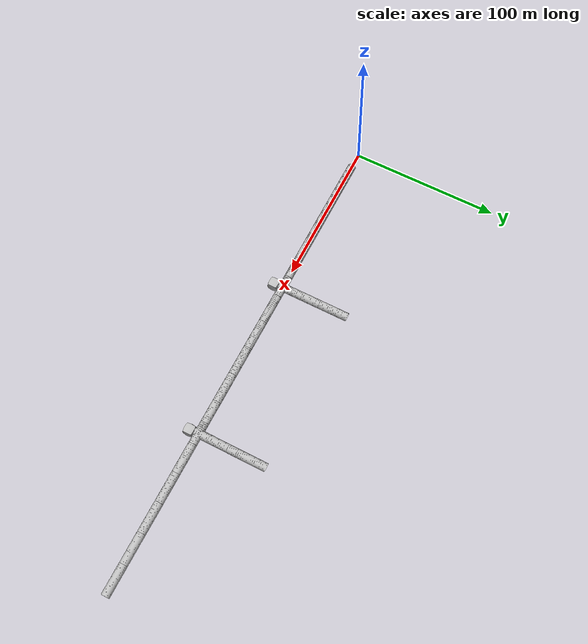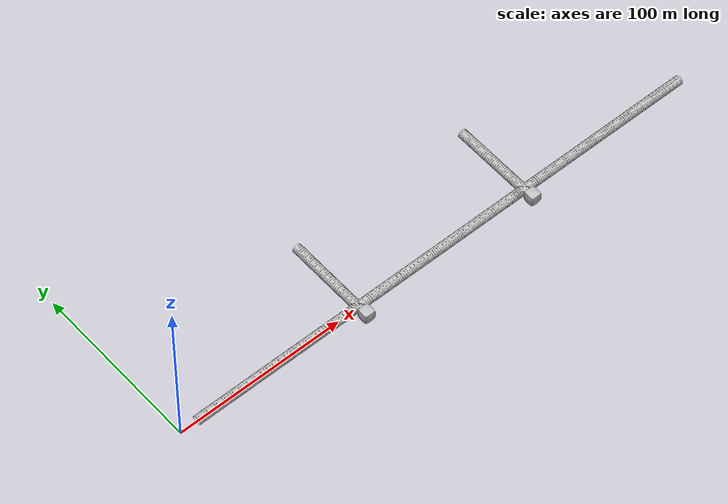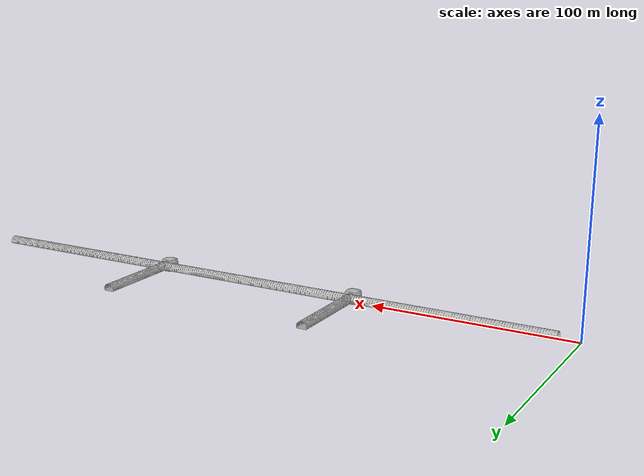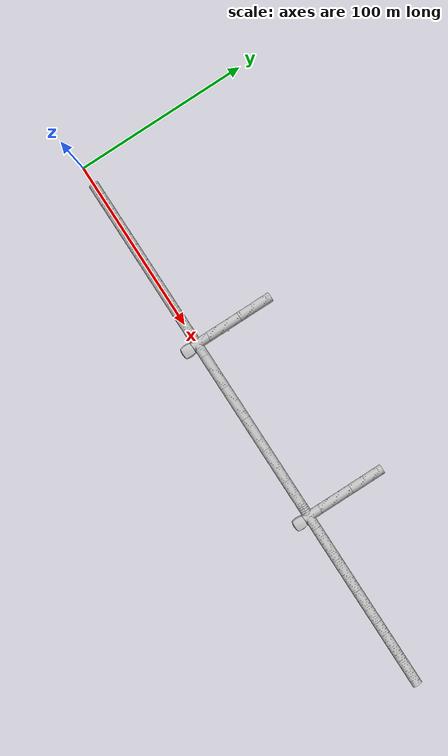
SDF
<sdf version="1.7">
 <world name="tunnel_practice_1">
  <scene>
   <ambient>0.2 0.2 0.2 1</ambient>
   <background>0.34 0.39 0.43 1</background>
   <grid>0</grid>
   <origin_visual>0</origin_visual>
   <shadows>1</shadows>
  </scene>
  <light name="user_point_light_0" type="point">
   <pose>30 0 3 0 -0 0</pose>
   <diffuse>0.5 0.5 0.5 1</diffuse>
   <specular>0.1 0.1 0.1 1</specular>
   <attenuation><range>40</range><constant>0.5</constant><linear>0</linear><quadratic>0</quadratic></attenuation>
   <cast_shadows>0</cast_shadows>
   <direction>0 0 -1</direction>
   <spot><inner_angle>0</inner_angle><outer_angle>0</outer_angle><falloff>0</falloff></spot>
  </light>
  <light name="user_point_light_1" type="point">
   <pose>60 0 3 0 -0 0</pose>
   <diffuse>0.5 0.5 0.5 1</diffuse>
   <specular>0.1 0.1 0.1 1</specular>
   <attenuation><range>40</range><constant>0.5</constant><linear>0</linear><quadratic>0</quadratic></attenuation>
   <cast_shadows>0</cast_shadows>
   <direction>0 0 -1</direction>
   <spot><inner_angle>0</inner_angle><outer_angle>0</outer_angle><falloff>0</falloff></spot>
  </light>
  <light name="user_point_light_2" type="point">
   <pose>90 0 3 0 -0 0</pose>
   <diffuse>0.5 0.5 0.5 1</diffuse>
   <specular>0.1 0.1 0.1 1</specular>
   <attenuation><range>40</range><constant>0.5</constant><linear>0</linear><quadratic>0</quadratic></attenuation>
   <cast_shadows>0</cast_shadows>
   <direction>0 0 -1</direction>
   <spot><inner_angle>0</inner_angle><outer_angle>0</outer_angle><falloff>0</falloff></spot>
  </light>
  <light name="user_point_light_3" type="point">
   <pose>120 0 3 0 -0 0</pose>
   <diffuse>0.5 0.5 0.5 1</diffuse>
   <specular>0.1 0.1 0.1 1</specular>
   <attenuation><range>40</range><constant>0.5</constant><linear>0</linear><quadratic>0</quadratic></attenuation>
   <cast_shadows>0</cast_shadows>
   <direction>0 0 -1</direction>
   <spot><inner_angle>0</inner_angle><outer_angle>0</outer_angle><falloff>0</falloff></spot>
  </light>
  <light name="user_point_light_4" type="point">
   <pose>150 0 3 0 -0 0</pose>
   <diffuse>0.5 0.5 0.5 1</diffuse>
   <specular>0.1 0.1 0.1 1</specular>
   <attenuation><range>40</range><constant>0.5</constant><linear>0</linear><quadratic>0</quadratic></attenuation>
   <cast_shadows>0</cast_shadows>
   <direction>0 0 -1</direction>
   <spot><inner_angle>0</inner_angle><outer_angle>0</outer_angle><falloff>0</falloff></spot>
  </light>
  <light name="user_point_light_5" type="point">
   <pose>180 0 3 0 -0 0</pose>
   <diffuse>0.5 0.5 0.5 1</diffuse>
   <specular>0.1 0.1 0.1 1</specular>
   <attenuation><range>40</range><constant>0.5</constant><linear>0</linear><quadratic>0</quadratic></attenuation>
   <cast_shadows>0</cast_shadows>
   <direction>0 0 -1</direction>
   <spot><inner_angle>0</inner_angle><outer_angle>0</outer_angle><falloff>0</falloff></spot>
  </light>
  <light name="user_point_light_6" type="point">
   <pose>210 0 3 0 -0 0</pose>
   <diffuse>0.5 0.5 0.5 1</diffuse>
   <specular>0.1 0.1 0.1 1</specular>
   <attenuation><range>40</range><constant>0.5</constant><linear>0</linear><quadratic>0</quadratic></attenuation>
   <cast_shadows>0</cast_shadows>
   <direction>0 0 -1</direction>
   <spot><inner_angle>0</inner_angle><outer_angle>0</outer_angle><falloff>0</falloff></spot>
  </light>
  <light name="user_point_light_7" type="point">
   <pose>240 0 3 0 -0 0</pose>
   <diffuse>0.5 0.5 0.5 1</diffuse>
   <specular>0.1 0.1 0.1 1</specular>
   <attenuation><range>40</range><constant>0.5</constant><linear>0</linear><quadratic>0</quadratic></attenuation>
   <cast_shadows>0</cast_shadows>
   <direction>0 0 -1</direction>
   <spot><inner_angle>0</inner_angle><outer_angle>0</outer_angle><falloff>0</falloff></spot>
  </light>
  <light name="user_point_light_8" type="point">
   <pose>270 0 3 0 -0 0</pose>
   <diffuse>0.5 0.5 0.5 1</diffuse>
   <specular>0.1 0.1 0.1 1</specular>
   <attenuation><range>40</range><constant>0.5</constant><linear>0</linear><quadratic>0</quadratic></attenuation>
   <cast_shadows>0</cast_shadows>
   <direction>0 0 -1</direction>
   <spot><inner_angle>0</inner_angle><outer_angle>0</outer_angle><falloff>0</falloff></spot>
  </light>
  <light name="user_point_light_9" type="point">
   <pose>300 0 3 0 -0 0</pose>
   <diffuse>0.5 0.5 0.5 1</diffuse>
   <specular>0.1 0.1 0.1 1</specular>
   <attenuation><range>40</range><constant>0.5</constant><linear>0</linear><quadratic>0</quadratic></attenuation>
   <cast_shadows>0</cast_shadows>
   <direction>0 0 -1</direction>
   <spot><inner_angle>0</inner_angle><outer_angle>0</outer_angle><falloff>0</falloff></spot>
  </light>
  <light name="user_point_light_10" type="point">
   <pose>330 0 3 0 -0 0</pose>
   <diffuse>0.5 0.5 0.5 1</diffuse>
   <specular>0.1 0.1 0.1 1</specular>
   <attenuation><range>40</range><constant>0.5</constant><linear>0</linear><quadratic>0</quadratic></attenuation>
   <cast_shadows>0</cast_shadows>
   <direction>0 0 -1</direction>
   <spot><inner_angle>0</inner_angle><outer_angle>0</outer_angle><falloff>0</falloff></spot>
  </light>
  <light name="user_point_light_11" type="point">
   <pose>360 0 3 0 -0 0</pose>
   <diffuse>0.5 0.5 0.5 1</diffuse>
   <specular>0.1 0.1 0.1 1</specular>
   <attenuation><range>40</range><constant>0.5</constant><linear>0</linear><quadratic>0</quadratic></attenuation>
   <cast_shadows>0</cast_shadows>
   <direction>0 0 -1</direction>
   <spot><inner_angle>0</inner_angle><outer_angle>0</outer_angle><falloff>0</falloff></spot>
  </light>
  <light name="user_point_light_12" type="point">
   <pose>390 0 3 0 -0 0</pose>
   <diffuse>0.5 0.5 0.5 1</diffuse>
   <specular>0.1 0.1 0.1 1</specular>
   <attenuation><range>40</range><constant>0.5</constant><linear>0</linear><quadratic>0</quadratic></attenuation>
   <cast_shadows>0</cast_shadows>
   <direction>0 0 -1</direction>
   <spot><inner_angle>0</inner_angle><outer_angle>0</outer_angle><falloff>0</falloff></spot>
  </light>
  <model name="tile_0">
   <static>1</static>
   <link name="link">
    <collision name="collision">
     <geometry>
      <mesh><scale>0.01 0.01 0.01</scale><uri>model://tunnel_entrance/meshes/Entrance.obj</uri></mesh>
     </geometry>
    </collision>
    <visual name="visual">
     <geometry>
      <mesh><scale>0.01 0.01 0.01</scale><uri>model://tunnel_entrance/meshes/Entrance.obj</uri></mesh>
     </geometry>
    </visual>
   </link>
   <pose>10 0 0 0 0 -1.5708</pose>
  </model>
  <model name="tile_1">
   <static>1</static>
   <link name="link">
    <collision name="collision">
     <geometry><mesh><uri>model://tunnel_tile_5/meshes/tunnel_tile_5.dae</uri></mesh></geometry>
    </collision>
    <collision name="collision_ground"><geometry><box><size>5 20 0.001</size></box></geometry></collision>
    <visual name="visual">
     <geometry><mesh><uri>model://tunnel_tile_5/meshes/tunnel_tile_5.dae</uri></mesh></geometry>
    </visual>
   </link>
   <pose>20 0 0 0 -0 1.5708</pose>
  </model>
  <model name="tile_2">
   <static>1</static>
   <link name="link">
    <collision name="collision">
     <geometry><mesh><uri>model://tunnel_tile_5/meshes/tunnel_tile_5.dae</uri></mesh></geometry>
    </collision>
    <collision name="collision_ground"><geometry><box><size>5 20 0.001</size></box></geometry></collision>
    <visual name="visual">
     <geometry><mesh><uri>model://tunnel_tile_5/meshes/tunnel_tile_5.dae</uri></mesh></geometry>
    </visual>
   </link>
   <pose>40 0 0 0 -0 1.5708</pose>
  </model>
  <model name="tile_3">
   <static>1</static>
   <link name="link">
    <collision name="collision">
     <geometry><mesh><uri>model://tunnel_tile_5/meshes/tunnel_tile_5.dae</uri></mesh></geometry>
    </collision>
    <collision name="collision_ground"><geometry><box><size>5 20 0.001</size></box></geometry></collision>
    <visual name="visual">
     <geometry><mesh><uri>model://tunnel_tile_5/meshes/tunnel_tile_5.dae</uri></mesh></geometry>
    </visual>
   </link>
   <pose>60 0 0 0 -0 1.5708</pose>
  </model>
  <model name="tile_4">
   <static>1</static>
   <link name="link">
    <collision name="collision">
     <geometry><mesh><uri>model://tunnel_tile_5/meshes/tunnel_tile_5.dae</uri></mesh></geometry>
    </collision>
    <collision name="collision_ground"><geometry><box><size>5 20 0.001</size></box></geometry></collision>
    <visual name="visual">
     <geometry><mesh><uri>model://tunnel_tile_5/meshes/tunnel_tile_5.dae</uri></mesh></geometry>
    </visual>
   </link>
   <pose>80 0 0 0 -0 1.5708</pose>
  </model>
  <model name="tile_5">
   <static>1</static>
   <link name="link">
    <collision name="collision">
     <geometry><mesh><uri>model://tunnel_tile_5/meshes/tunnel_tile_5.dae</uri></mesh></geometry>
    </collision>
    <collision name="collision_ground"><geometry><box><size>5 20 0.001</size></box></geometry></collision>
    <visual name="visual">
     <geometry><mesh><uri>model://tunnel_tile_5/meshes/tunnel_tile_5.dae</uri></mesh></geometry>
    </visual>
   </link>
   <pose>100 0 0 0 -0 1.5708</pose>
  </model>
  <model name="tile_7">
   <static>1</static>
   <link name="link">
    <collision name="collision">
     <geometry>
      <mesh>
       <scale>0.01 0.01 0.01</scale>
       <uri>model://tunnel_intersection/meshes/Tunnel_Intersection.obj</uri>
      </mesh>
     </geometry>
    </collision>
    <visual name="visual">
     <geometry>
      <mesh>
       <scale>0.01 0.01 0.01</scale>
       <uri>model://tunnel_intersection/meshes/Tunnel_Intersection.obj</uri>
      </mesh>
     </geometry>
    </visual>
   </link>
   <pose>120 0 0 0 -0 1.5708</pose>
  </model>
  <model name="blocker_1">
   <static>1</static>
   <link name="link">
    <collision name="collision">
     <geometry><mesh><uri>model://tunnel_tile_blocker/meshes/tunnel_tile_blocker.dae</uri></mesh></geometry>
    </collision>
    <visual name="visual">
     <geometry><mesh><uri>model://tunnel_tile_blocker/meshes/tunnel_tile_blocker.dae</uri></mesh></geometry>
    </visual>
   </link>
   <pose>113 -6 0 0 -0 0</pose>
  </model>
  <model name="tile_rot_1">
   <static>1</static>
   <link name="link">
    <collision name="collision">
     <geometry><mesh><uri>model://tunnel_tile_5/meshes/tunnel_tile_5.dae</uri></mesh></geometry>
    </collision>
    <collision name="collision_ground"><geometry><box><size>5 20 0.001</size></box></geometry></collision>
    <visual name="visual">
     <geometry><mesh><uri>model://tunnel_tile_5/meshes/tunnel_tile_5.dae</uri></mesh></geometry>
    </visual>
   </link>
   <pose>112.5 17 0 0 -0 0</pose>
  </model>
  <model name="tile_rot_2">
   <static>1</static>
   <link name="link">
    <collision name="collision">
     <geometry><mesh><uri>model://tunnel_tile_5/meshes/tunnel_tile_5.dae</uri></mesh></geometry>
    </collision>
    <collision name="collision_ground"><geometry><box><size>5 20 0.001</size></box></geometry></collision>
    <visual name="visual">
     <geometry><mesh><uri>model://tunnel_tile_5/meshes/tunnel_tile_5.dae</uri></mesh></geometry>
    </visual>
   </link>
   <pose>112.5 37 0 0 -0 0</pose>
  </model>
  <model name="tile_8">
   <static>1</static>
   <link name="link">
    <collision name="collision">
     <geometry><mesh><uri>model://tunnel_tile_5/meshes/tunnel_tile_5.dae</uri></mesh></geometry>
    </collision>
    <collision name="collision_ground"><geometry><box><size>5 20 0.001</size></box></geometry></collision>
    <visual name="visual">
     <geometry><mesh><uri>model://tunnel_tile_5/meshes/tunnel_tile_5.dae</uri></mesh></geometry>
    </visual>
   </link>
   <pose>130 0 0 0 -0 1.5708</pose>
  </model>
  <model name="tile_9">
   <static>1</static>
   <link name="link">
    <collision name="collision">
     <geometry><mesh><uri>model://tunnel_tile_5/meshes/tunnel_tile_5.dae</uri></mesh></geometry>
    </collision>
    <collision name="collision_ground"><geometry><box><size>5 20 0.001</size></box></geometry></collision>
    <visual name="visual">
     <geometry><mesh><uri>model://tunnel_tile_5/meshes/tunnel_tile_5.dae</uri></mesh></geometry>
    </visual>
   </link>
   <pose>150 0 0 0 -0 1.5708</pose>
  </model>
  <model name="tile_10">
   <static>1</static>
   <link name="link">
    <collision name="collision">
     <geometry><mesh><uri>model://tunnel_tile_5/meshes/tunnel_tile_5.dae</uri></mesh></geometry>
    </collision>
    <collision name="collision_ground"><geometry><box><size>5 20 0.001</size></box></geometry></collision>
    <visual name="visual">
     <geometry><mesh><uri>model://tunnel_tile_5/meshes/tunnel_tile_5.dae</uri></mesh></geometry>
    </visual>
   </link>
   <pose>170 0 0 0 -0 1.5708</pose>
  </model>
  <model name="tile_11">
   <static>1</static>
   <link name="link">
    <collision name="collision">
     <geometry><mesh><uri>model://tunnel_tile_5/meshes/tunnel_tile_5.dae</uri></mesh></geometry>
    </collision>
    <collision name="collision_ground"><geometry><box><size>5 20 0.001</size></box></geometry></collision>
    <visual name="visual">
     <geometry><mesh><uri>model://tunnel_tile_5/meshes/tunnel_tile_5.dae</uri></mesh></geometry>
    </visual>
   </link>
   <pose>190 0 0 0 -0 1.5708</pose>
  </model>
  <model name="tile_12">
   <static>1</static>
   <link name="link">
    <collision name="collision">
     <geometry><mesh><uri>model://tunnel_tile_5/meshes/tunnel_tile_5.dae</uri></mesh></geometry>
    </collision>
    <collision name="collision_ground"><geometry><box><size>5 20 0.001</size></box></geometry></collision>
    <visual name="visual">
     <geometry><mesh><uri>model://tunnel_tile_5/meshes/tunnel_tile_5.dae</uri></mesh></geometry>
    </visual>
   </link>
   <pose>210 0 0 0 -0 1.5708</pose>
  </model>
  <model name="tile_13">
   <static>1</static>
   <link name="link">
    <collision name="collision">
     <geometry>
      <mesh>
       <scale>0.01 0.01 0.01</scale>
       <uri>model://tunnel_intersection/meshes/Tunnel_Intersection.obj</uri>
      </mesh>
     </geometry>
    </collision>
    <visual name="visual">
     <geometry>
      <mesh>
       <scale>0.01 0.01 0.01</scale>
       <uri>model://tunnel_intersection/meshes/Tunnel_Intersection.obj</uri>
      </mesh>
     </geometry>
    </visual>
   </link>
   <pose>230 0 0 0 -0 1.5708</pose>
  </model>
  <model name="blocker_2">
   <static>1</static>
   <link name="link">
    <collision name="collision">
     <geometry><mesh><uri>model://tunnel_tile_blocker/meshes/tunnel_tile_blocker.dae</uri></mesh></geometry>
    </collision>
    <visual name="visual">
     <geometry><mesh><uri>model://tunnel_tile_blocker/meshes/tunnel_tile_blocker.dae</uri></mesh></geometry>
    </visual>
   </link>
   <pose>223 -6 0 0 -0 0</pose>
  </model>
  <model name="tile_rot_3">
   <static>1</static>
   <link name="link">
    <collision name="collision">
     <geometry><mesh><uri>model://tunnel_tile_5/meshes/tunnel_tile_5.dae</uri></mesh></geometry>
    </collision>
    <collision name="collision_ground"><geometry><box><size>5 20 0.001</size></box></geometry></collision>
    <visual name="visual">
     <geometry><mesh><uri>model://tunnel_tile_5/meshes/tunnel_tile_5.dae</uri></mesh></geometry>
    </visual>
   </link>
   <pose>222.5 17 0 0 -0 0</pose>
  </model>
  <model name="tile_rot_4">
   <static>1</static>
   <link name="link">
    <collision name="collision">
     <geometry><mesh><uri>model://tunnel_tile_5/meshes/tunnel_tile_5.dae</uri></mesh></geometry>
    </collision>
    <collision name="collision_ground"><geometry><box><size>5 20 0.001</size></box></geometry></collision>
    <visual name="visual">
     <geometry><mesh><uri>model://tunnel_tile_5/meshes/tunnel_tile_5.dae</uri></mesh></geometry>
    </visual>
   </link>
   <pose>222.5 37 0 0 -0 0</pose>
  </model>
  <model name="tile_14">
   <static>1</static>
   <link name="link">
    <collision name="collision">
     <geometry><mesh><uri>model://tunnel_tile_5/meshes/tunnel_tile_5.dae</uri></mesh></geometry>
    </collision>
    <collision name="collision_ground"><geometry><box><size>5 20 0.001</size></box></geometry></collision>
    <visual name="visual">
     <geometry><mesh><uri>model://tunnel_tile_5/meshes/tunnel_tile_5.dae</uri></mesh></geometry>
    </visual>
   </link>
   <pose>240 0 0 0 -0 1.5708</pose>
  </model>
  <model name="tile_15">
   <static>1</static>
   <link name="link">
    <collision name="collision">
     <geometry><mesh><uri>model://tunnel_tile_5/meshes/tunnel_tile_5.dae</uri></mesh></geometry>
    </collision>
    <collision name="collision_ground"><geometry><box><size>5 20 0.001</size></box></geometry></collision>
    <visual name="visual">
     <geometry><mesh><uri>model://tunnel_tile_5/meshes/tunnel_tile_5.dae</uri></mesh></geometry>
    </visual>
   </link>
   <pose>260 0 0 0 -0 1.5708</pose>
  </model>
  <model name="tile_16">
   <static>1</static>
   <link name="link">
    <collision name="collision">
     <geometry><mesh><uri>model://tunnel_tile_5/meshes/tunnel_tile_5.dae</uri></mesh></geometry>
    </collision>
    <collision name="collision_ground"><geometry><box><size>5 20 0.001</size></box></geometry></collision>
    <visual name="visual">
     <geometry><mesh><uri>model://tunnel_tile_5/meshes/tunnel_tile_5.dae</uri></mesh></geometry>
    </visual>
   </link>
   <pose>280 0 0 0 -0 1.5708</pose>
  </model>
  <model name="tile_17">
   <static>1</static>
   <link name="link">
    <collision name="collision">
     <geometry><mesh><uri>model://tunnel_tile_5/meshes/tunnel_tile_5.dae</uri></mesh></geometry>
    </collision>
    <collision name="collision_ground"><geometry><box><size>5 20 0.001</size></box></geometry></collision>
    <visual name="visual">
     <geometry><mesh><uri>model://tunnel_tile_5/meshes/tunnel_tile_5.dae</uri></mesh></geometry>
    </visual>
   </link>
   <pose>300 0 0 0 -0 1.5708</pose>
  </model>
  <model name="tile_18">
   <static>1</static>
   <link name="link">
    <collision name="collision">
     <geometry><mesh><uri>model://tunnel_tile_5/meshes/tunnel_tile_5.dae</uri></mesh></geometry>
    </collision>
    <collision name="collision_ground"><geometry><box><size>5 20 0.001</size></box></geometry></collision>
    <visual name="visual">
     <geometry><mesh><uri>model://tunnel_tile_5/meshes/tunnel_tile_5.dae</uri></mesh></geometry>
    </visual>
   </link>
   <pose>320 0 0 0 -0 1.5708</pose>
  </model>
  <light name="user_point_light_final" type="point">
   <pose>113 25 3 0 -0 0</pose>
   <diffuse>0.5 0.5 0.5 1</diffuse>
   <specular>0.1 0.1 0.1 1</specular>
   <attenuation><range>40</range><constant>0.5</constant><linear>0</linear><quadratic>0</quadratic></attenuation>
   <cast_shadows>0</cast_shadows>
   <direction>0 0 -1</direction>
   <spot><inner_angle>0</inner_angle><outer_angle>0</outer_angle><falloff>0</falloff></spot>
  </light>
  <gravity>0 0 -9.8</gravity>
  <magnetic_field>6e-06 2.3e-05 -4.2e-05</magnetic_field>
  <atmosphere type="adiabatic"/>
  <physics type="ode">
   <max_step_size>0.001</max_step_size>
   <real_time_factor>1</real_time_factor>
   <real_time_update_rate>1000</real_time_update_rate>
  </physics>
  <spherical_coordinates>
   <surface_model>EARTH_WGS84</surface_model>
   <latitude_deg>0</latitude_deg>
   <longitude_deg>0</longitude_deg>
   <elevation>0</elevation>
   <heading_deg>0</heading_deg>
  </spherical_coordinates>
  <model name="jersey_barrier">
   <static>1</static>
   <link name="link">
    <visual name="visual">
     <geometry><mesh><uri>model://jersey_barrier/meshes/jersey_barrier.dae</uri></mesh></geometry>
    </visual>
    <collision name="upright">
     <pose>0 0 0.5715 0 -0 0</pose>
     <geometry><box><size>4.06542 0.3063 1.143</size></box></geometry>
    </collision>
    <collision name="base">
     <pose>0 0 0.032258 0 -0 0</pose>
     <geometry><box><size>4.06542 0.8107 0.064516</size></box></geometry>
    </collision>
    <collision name="base2">
     <pose>0 0 0.1 0 -0 0</pose>
     <geometry><box><size>4.06542 0.65 0.1</size></box></geometry>
    </collision>
    <collision name="base3">
     <pose>0 0 0.2 0 -0 0</pose>
     <geometry><box><size>4.06542 0.5 0.1</size></box></geometry>
    </collision>
    <collision name="left-angle">
     <pose>0 -0.224 0.2401 0.9 -0 0</pose>
     <geometry><box><size>4.06542 0.5 0.064516</size></box></geometry>
    </collision>
    <collision name="right-angle">
     <pose>0 0.224 0.2401 -0.9 0 0</pose>
     <geometry><box><size>4.06542 0.5 0.064516</size></box></geometry>
    </collision>
   </link>
   <pose>96.0414 0.942363 0 0 0 -0.484459</pose>
  </model>
  <model name="jersey_barrier_0">
   <static>1</static>
   <link name="link">
    <visual name="visual">
     <geometry><mesh><uri>model://jersey_barrier/meshes/jersey_barrier.dae</uri></mesh></geometry>
    </visual>
    <collision name="upright">
     <pose>0 0 0.5715 0 -0 0</pose>
     <geometry><box><size>4.06542 0.3063 1.143</size></box></geometry>
    </collision>
    <collision name="base">
     <pose>0 0 0.032258 0 -0 0</pose>
     <geometry><box><size>4.06542 0.8107 0.064516</size></box></geometry>
    </collision>
    <collision name="base2">
     <pose>0 0 0.1 0 -0 0</pose>
     <geometry><box><size>4.06542 0.65 0.1</size></box></geometry>
    </collision>
    <collision name="base3">
     <pose>0 0 0.2 0 -0 0</pose>
     <geometry><box><size>4.06542 0.5 0.1</size></box></geometry>
    </collision>
    <collision name="left-angle">
     <pose>0 -0.224 0.2401 0.9 -0 0</pose>
     <geometry><box><size>4.06542 0.5 0.064516</size></box></geometry>
    </collision>
    <collision name="right-angle">
     <pose>0 0.224 0.2401 -0.9 0 0</pose>
     <geometry><box><size>4.06542 0.5 0.064516</size></box></geometry>
    </collision>
   </link>
   <pose>112.341 12.5988 0 0 -0 0</pose>
  </model>
  <model name="jersey_barrier_clone">
   <static>1</static>
   <link name="link">
    <visual name="visual">
     <geometry><mesh><uri>model://jersey_barrier/meshes/jersey_barrier.dae</uri></mesh></geometry>
    </visual>
    <collision name="upright">
     <pose>0 0 0.5715 0 -0 0</pose>
     <geometry><box><size>4.06542 0.3063 1.143</size></box></geometry>
    </collision>
    <collision name="base">
     <pose>0 0 0.032258 0 -0 0</pose>
     <geometry><box><size>4.06542 0.8107 0.064516</size></box></geometry>
    </collision>
    <collision name="base2">
     <pose>0 0 0.1 0 -0 0</pose>
     <geometry><box><size>4.06542 0.65 0.1</size></box></geometry>
    </collision>
    <collision name="base3">
     <pose>0 0 0.2 0 -0 0</pose>
     <geometry><box><size>4.06542 0.5 0.1</size></box></geometry>
    </collision>
    <collision name="left-angle">
     <pose>0 -0.224 0.2401 0.9 -0 0</pose>
     <geometry><box><size>4.06542 0.5 0.064516</size></box></geometry>
    </collision>
    <collision name="right-angle">
     <pose>0 0.224 0.2401 -0.9 0 0</pose>
     <geometry><box><size>4.06542 0.5 0.064516</size></box></geometry>
    </collision>
   </link>
   <pose>103.464 -0.389692 -0 0 -0 0.726599</pose>
  </model>
  <model name="Valve">
   <static>1</static>
   <link name="link">
    <collision name="collision">
     <geometry><mesh><uri>model://Valve/meshes/Valve.dae</uri></mesh></geometry>
    </collision>
    <visual name="visual"><geometry><mesh><uri>model://Valve/meshes/Valve.dae</uri></mesh></geometry></visual>
   </link>
   <pose>111.682 5.68632 0 0 -0 0</pose>
  </model>
  <model name="Valve_0">
   <static>1</static>
   <link name="link">
    <collision name="collision">
     <geometry><mesh><uri>model://Valve/meshes/Valve.dae</uri></mesh></geometry>
    </collision>
    <visual name="visual"><geometry><mesh><uri>model://Valve/meshes/Valve.dae</uri></mesh></geometry></visual>
   </link>
   <pose>109.839 18.0261 1.70539 0 1.53294 0</pose>
  </model>
  <model name="Valve_1">
   <static>1</static>
   <link name="link">
    <collision name="collision">
     <geometry><mesh><uri>model://Valve/meshes/Valve.dae</uri></mesh></geometry>
    </collision>
    <visual name="visual"><geometry><mesh><uri>model://Valve/meshes/Valve.dae</uri></mesh></geometry></visual>
   </link>
   <pose>115.74 18.0494 0.624616 0 -1.18286 0</pose>
  </model>
 </world>
</sdf>
